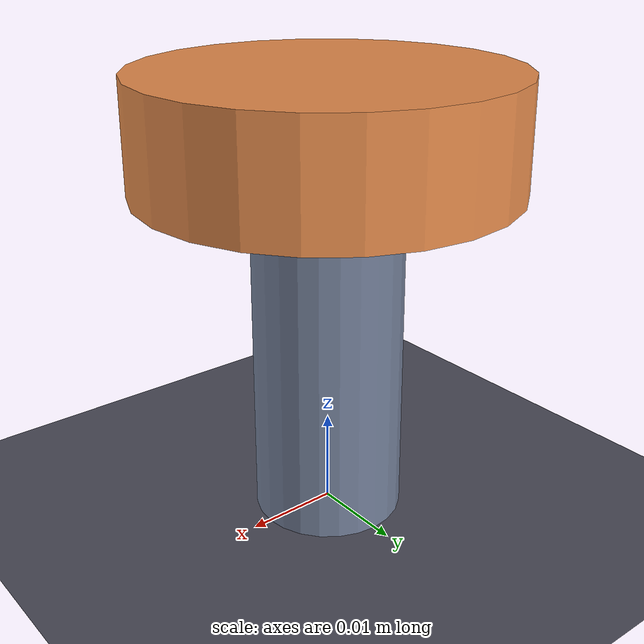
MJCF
<mujoco model="wrench_object">
  <option gravity="0 0 -9.81"/>
  <asset>
    <texture type="skybox" builtin="gradient" rgb1="0.3 0.5 0.7" rgb2="0 0 0" width="256" height="1536"/>
  </asset>
  <worldbody>
    <light pos="0 0 0.4" dir="0 0 -1" directional="true"/>
    <geom name="floor" type="plane" size="0.3 0.3 0.05" rgba="0.30 0.30 0.35 1"/>
    <body name="object" pos="0 0 0">
      <geom name="stem" type="cylinder" size="0.008 0.018" pos="0 0 0.018" rgba="0.45 0.50 0.60 1"/>
      <geom name="cap"  type="cylinder" size="0.020 0.006" pos="0 0 0.042" rgba="0.90 0.55 0.30 1"/>
    </body>
  </worldbody>
</mujoco>
